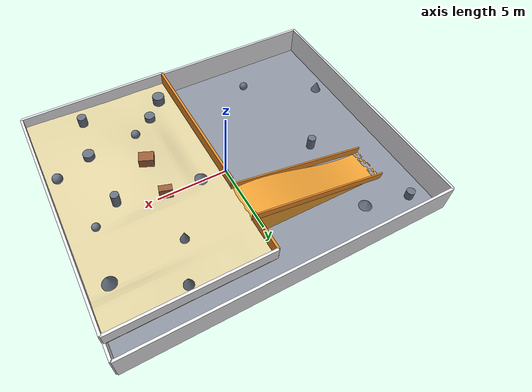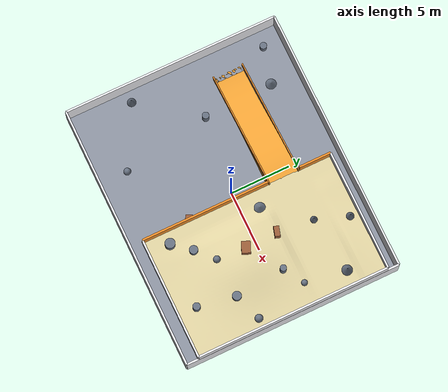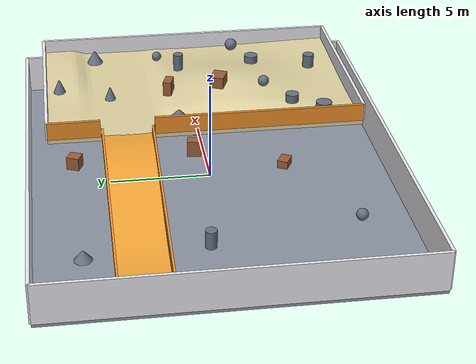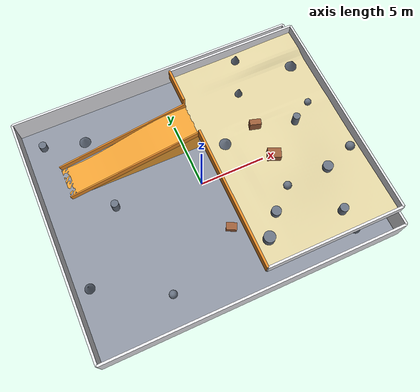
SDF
<?xml version='1.0' encoding='utf-8'?>
<sdf version="1.7">
  <world name="floor_6">
    <gravity>0 0 -9.8</gravity>
    <plugin name="gazebo_ros_state" filename="libgazebo_ros_state.so">
      <ros>
        <namespace>/gazebo</namespace>
      </ros>
    </plugin>
    <physics name="ode_physics" type="ode">
      <max_step_size>0.001</max_step_size>
      <real_time_factor>1</real_time_factor>
      <real_time_update_rate>1000</real_time_update_rate>
      <ode>
        <solver>
          <type>quick</type>
          <iters>150</iters>
          <sor>1.3</sor>
        </solver>
        <constraints>
          <cfm>0</cfm>
          <erp>0.2</erp>
          <contact_max_correcting_vel>0.2</contact_max_correcting_vel>
          <contact_surface_layer>0.001</contact_surface_layer>
        </constraints>
      </ode>
    </physics>
    <light name="sun" type="directional">
      <pose>0 0 28 0 0 0</pose>
      <diffuse>0.92 0.91 0.88 1</diffuse>
      <specular>0.18 0.18 0.16 1</specular>
      <direction>-0.35 -0.28 -0.9</direction>
      <cast_shadows>true</cast_shadows>
    </light>
    <light name="fill" type="point">
      <pose>0 0 4.5 0 0 0</pose>
      <diffuse>0.45 0.48 0.52 1</diffuse>
      <specular>0.02 0.02 0.02 1</specular>
      <cast_shadows>false</cast_shadows>
      <attenuation>
        <range>80</range>
        <constant>0.5</constant>
        <linear>0.02</linear>
      </attenuation>
    </light>
    <scene>
      <ambient>0.48 0.49 0.53 1</ambient>
      <background>0.72 0.77 0.84 1</background>
    </scene>
    <gui fullscreen="false">
      <camera name="user_camera">
        <pose>15.4 -16.2 18.7 0 0.65 2.2</pose>
        <view_controller>orbit</view_controller>
      </camera>
    </gui>
    <model name="floor_6_structure">
      <static>true</static>
      <link name="structure">
        <collision name="lower_collision">
          <pose>0 0 -0.1 0 0 0</pose>
          <geometry>
            <box>
              <size>22 18 0.2</size>
            </box>
          </geometry>
          <max_contacts>40</max_contacts>
          <surface>
            <friction>
              <ode>
                <mu>2</mu>
                <mu2>2</mu2>
              </ode>
            </friction>
            <contact>
              <ode>
                <kp>1e7</kp>
                <kd>1000</kd>
                <max_vel>0.1</max_vel>
                <min_depth>0.001</min_depth>
              </ode>
            </contact>
          </surface>
        </collision>
        <visual name="lower_visual">
          <pose>0 0 -0.1 0 0 0</pose>
          <geometry>
            <box>
              <size>22 18 0.2</size>
            </box>
          </geometry>
          <material>
            <ambient>0.54 0.57 0.62 1</ambient>
            <diffuse>0.54 0.57 0.62 1</diffuse>
          </material>
        </visual>
        <collision name="upper_surface_collision">
          <pose>0 0 0 0 0 0</pose>
          <geometry>
            <mesh>
              <uri>3DModel/floor/surfaces/floor_6_upper_surface.stl</uri>
            </mesh>
          </geometry>
          <max_contacts>40</max_contacts>
          <surface>
            <friction>
              <ode>
                <mu>8</mu>
                <mu2>8</mu2>
              </ode>
            </friction>
            <contact>
              <ode>
                <kp>1e7</kp>
                <kd>1000</kd>
                <max_vel>0.1</max_vel>
                <min_depth>0.001</min_depth>
              </ode>
            </contact>
          </surface>
        </collision>
        <visual name="upper_surface_visual">
          <pose>0 0 0 0 0 0</pose>
          <geometry>
            <mesh>
              <uri>3DModel/floor/surfaces/floor_6_upper_surface.stl</uri>
            </mesh>
          </geometry>
          <material>
            <ambient>0.86 0.81 0.62 1</ambient>
            <diffuse>0.86 0.81 0.62 1</diffuse>
          </material>
        </visual>
        <collision name="ramp_collision">
          <pose>0 0 0 0 0 0</pose>
          <geometry>
            <mesh>
              <uri>3DModel/floor/surfaces/floor_6_ramp.stl</uri>
            </mesh>
          </geometry>
          <max_contacts>40</max_contacts>
          <surface>
            <friction>
              <ode>
                <mu>8</mu>
                <mu2>8</mu2>
              </ode>
            </friction>
            <contact>
              <ode>
                <kp>1e7</kp>
                <kd>1000</kd>
                <max_vel>0.1</max_vel>
                <min_depth>0.001</min_depth>
              </ode>
            </contact>
          </surface>
        </collision>
        <visual name="ramp_visual">
          <pose>0 0 0 0 0 0</pose>
          <geometry>
            <mesh>
              <uri>3DModel/floor/surfaces/floor_6_ramp.stl</uri>
            </mesh>
          </geometry>
          <material>
            <ambient>0.92 0.62 0.20 1</ambient>
            <diffuse>0.92 0.62 0.20 1</diffuse>
          </material>
        </visual>
        <collision name="ramp_rail_-1_collision">
          <pose>-3.95659161 2.74 1.24190272 0 -0.205991337 0</pose>
          <geometry>
            <box>
              <size>10.267059 0.1 0.5</size>
            </box>
          </geometry>
          <max_contacts>40</max_contacts>
          <surface>
            <friction>
              <ode>
                <mu>2</mu>
                <mu2>2</mu2>
              </ode>
            </friction>
            <contact>
              <ode>
                <kp>1e7</kp>
                <kd>1000</kd>
                <max_vel>0.1</max_vel>
                <min_depth>0.001</min_depth>
              </ode>
            </contact>
          </surface>
        </collision>
        <visual name="ramp_rail_-1_visual">
          <pose>-3.95659161 2.74 1.24190272 0 -0.205991337 0</pose>
          <geometry>
            <box>
              <size>10.267059 0.1 0.5</size>
            </box>
          </geometry>
          <material>
            <ambient>0.92 0.55 0.16 1</ambient>
            <diffuse>0.92 0.55 0.16 1</diffuse>
          </material>
        </visual>
        <collision name="ramp_rail_1_collision">
          <pose>-3.95659161 5.26 1.24190272 0 -0.205991337 0</pose>
          <geometry>
            <box>
              <size>10.267059 0.1 0.5</size>
            </box>
          </geometry>
          <max_contacts>40</max_contacts>
          <surface>
            <friction>
              <ode>
                <mu>2</mu>
                <mu2>2</mu2>
              </ode>
            </friction>
            <contact>
              <ode>
                <kp>1e7</kp>
                <kd>1000</kd>
                <max_vel>0.1</max_vel>
                <min_depth>0.001</min_depth>
              </ode>
            </contact>
          </surface>
        </collision>
        <visual name="ramp_rail_1_visual">
          <pose>-3.95659161 5.26 1.24190272 0 -0.205991337 0</pose>
          <geometry>
            <box>
              <size>10.267059 0.1 0.5</size>
            </box>
          </geometry>
          <material>
            <ambient>0.92 0.55 0.16 1</ambient>
            <diffuse>0.92 0.55 0.16 1</diffuse>
          </material>
        </visual>
        <collision name="upper_rail_0_collision">
          <pose>6 -8 2.55 0 0 0</pose>
          <geometry>
            <box>
              <size>10 0.16 0.9</size>
            </box>
          </geometry>
          <max_contacts>40</max_contacts>
          <surface>
            <friction>
              <ode>
                <mu>2</mu>
                <mu2>2</mu2>
              </ode>
            </friction>
            <contact>
              <ode>
                <kp>1e7</kp>
                <kd>1000</kd>
                <max_vel>0.1</max_vel>
                <min_depth>0.001</min_depth>
              </ode>
            </contact>
          </surface>
        </collision>
        <visual name="upper_rail_0_visual">
          <pose>6 -8 2.55 0 0 0</pose>
          <geometry>
            <box>
              <size>10 0.16 0.9</size>
            </box>
          </geometry>
          <material>
            <ambient>0.91 0.91 0.93 1</ambient>
            <diffuse>0.91 0.91 0.93 1</diffuse>
          </material>
        </visual>
        <collision name="upper_rail_1_collision">
          <pose>11 0 2.55 0 0 1.57079633</pose>
          <geometry>
            <box>
              <size>16 0.16 0.9</size>
            </box>
          </geometry>
          <max_contacts>40</max_contacts>
          <surface>
            <friction>
              <ode>
                <mu>2</mu>
                <mu2>2</mu2>
              </ode>
            </friction>
            <contact>
              <ode>
                <kp>1e7</kp>
                <kd>1000</kd>
                <max_vel>0.1</max_vel>
                <min_depth>0.001</min_depth>
              </ode>
            </contact>
          </surface>
        </collision>
        <visual name="upper_rail_1_visual">
          <pose>11 0 2.55 0 0 1.57079633</pose>
          <geometry>
            <box>
              <size>16 0.16 0.9</size>
            </box>
          </geometry>
          <material>
            <ambient>0.91 0.91 0.93 1</ambient>
            <diffuse>0.91 0.91 0.93 1</diffuse>
          </material>
        </visual>
        <collision name="upper_rail_2_collision">
          <pose>6 8 2.55 0 0 3.14159265</pose>
          <geometry>
            <box>
              <size>10 0.16 0.9</size>
            </box>
          </geometry>
          <max_contacts>40</max_contacts>
          <surface>
            <friction>
              <ode>
                <mu>2</mu>
                <mu2>2</mu2>
              </ode>
            </friction>
            <contact>
              <ode>
                <kp>1e7</kp>
                <kd>1000</kd>
                <max_vel>0.1</max_vel>
                <min_depth>0.001</min_depth>
              </ode>
            </contact>
          </surface>
        </collision>
        <visual name="upper_rail_2_visual">
          <pose>6 8 2.55 0 0 3.14159265</pose>
          <geometry>
            <box>
              <size>10 0.16 0.9</size>
            </box>
          </geometry>
          <material>
            <ambient>0.91 0.91 0.93 1</ambient>
            <diffuse>0.91 0.91 0.93 1</diffuse>
          </material>
        </visual>
        <collision name="upper_west_south_collision">
          <pose>1 -2.675 2.55 0 0 0</pose>
          <geometry>
            <box>
              <size>0.16 10.65 0.9</size>
            </box>
          </geometry>
          <max_contacts>40</max_contacts>
          <surface>
            <friction>
              <ode>
                <mu>2</mu>
                <mu2>2</mu2>
              </ode>
            </friction>
            <contact>
              <ode>
                <kp>1e7</kp>
                <kd>1000</kd>
                <max_vel>0.1</max_vel>
                <min_depth>0.001</min_depth>
              </ode>
            </contact>
          </surface>
        </collision>
        <visual name="upper_west_south_visual">
          <pose>1 -2.675 2.55 0 0 0</pose>
          <geometry>
            <box>
              <size>0.16 10.65 0.9</size>
            </box>
          </geometry>
          <material>
            <ambient>0.92 0.55 0.16 1</ambient>
            <diffuse>0.92 0.55 0.16 1</diffuse>
          </material>
        </visual>
        <collision name="upper_west_north_collision">
          <pose>1 6.675 2.55 0 0 0</pose>
          <geometry>
            <box>
              <size>0.16 2.65 0.9</size>
            </box>
          </geometry>
          <max_contacts>40</max_contacts>
          <surface>
            <friction>
              <ode>
                <mu>2</mu>
                <mu2>2</mu2>
              </ode>
            </friction>
            <contact>
              <ode>
                <kp>1e7</kp>
                <kd>1000</kd>
                <max_vel>0.1</max_vel>
                <min_depth>0.001</min_depth>
              </ode>
            </contact>
          </surface>
        </collision>
        <visual name="upper_west_north_visual">
          <pose>1 6.675 2.55 0 0 0</pose>
          <geometry>
            <box>
              <size>0.16 2.65 0.9</size>
            </box>
          </geometry>
          <material>
            <ambient>0.92 0.55 0.16 1</ambient>
            <diffuse>0.92 0.55 0.16 1</diffuse>
          </material>
        </visual>
        <collision name="boundary_0_collision">
          <pose>0 -9 1 0 0 0</pose>
          <geometry>
            <box>
              <size>22 0.16 2</size>
            </box>
          </geometry>
          <max_contacts>40</max_contacts>
          <surface>
            <friction>
              <ode>
                <mu>2</mu>
                <mu2>2</mu2>
              </ode>
            </friction>
            <contact>
              <ode>
                <kp>1e7</kp>
                <kd>1000</kd>
                <max_vel>0.1</max_vel>
                <min_depth>0.001</min_depth>
              </ode>
            </contact>
          </surface>
        </collision>
        <visual name="boundary_0_visual">
          <pose>0 -9 1 0 0 0</pose>
          <geometry>
            <box>
              <size>22 0.16 2</size>
            </box>
          </geometry>
          <material>
            <ambient>0.91 0.91 0.93 1</ambient>
            <diffuse>0.91 0.91 0.93 1</diffuse>
          </material>
        </visual>
        <collision name="boundary_1_collision">
          <pose>11 0 1 0 0 1.57079633</pose>
          <geometry>
            <box>
              <size>18 0.16 2</size>
            </box>
          </geometry>
          <max_contacts>40</max_contacts>
          <surface>
            <friction>
              <ode>
                <mu>2</mu>
                <mu2>2</mu2>
              </ode>
            </friction>
            <contact>
              <ode>
                <kp>1e7</kp>
                <kd>1000</kd>
                <max_vel>0.1</max_vel>
                <min_depth>0.001</min_depth>
              </ode>
            </contact>
          </surface>
        </collision>
        <visual name="boundary_1_visual">
          <pose>11 0 1 0 0 1.57079633</pose>
          <geometry>
            <box>
              <size>18 0.16 2</size>
            </box>
          </geometry>
          <material>
            <ambient>0.91 0.91 0.93 1</ambient>
            <diffuse>0.91 0.91 0.93 1</diffuse>
          </material>
        </visual>
        <collision name="boundary_2_collision">
          <pose>0 9 1 0 0 3.14159265</pose>
          <geometry>
            <box>
              <size>22 0.16 2</size>
            </box>
          </geometry>
          <max_contacts>40</max_contacts>
          <surface>
            <friction>
              <ode>
                <mu>2</mu>
                <mu2>2</mu2>
              </ode>
            </friction>
            <contact>
              <ode>
                <kp>1e7</kp>
                <kd>1000</kd>
                <max_vel>0.1</max_vel>
                <min_depth>0.001</min_depth>
              </ode>
            </contact>
          </surface>
        </collision>
        <visual name="boundary_2_visual">
          <pose>0 9 1 0 0 3.14159265</pose>
          <geometry>
            <box>
              <size>22 0.16 2</size>
            </box>
          </geometry>
          <material>
            <ambient>0.91 0.91 0.93 1</ambient>
            <diffuse>0.91 0.91 0.93 1</diffuse>
          </material>
        </visual>
        <collision name="boundary_3_collision">
          <pose>-11 0 1 0 0 -1.57079633</pose>
          <geometry>
            <box>
              <size>18 0.16 2</size>
            </box>
          </geometry>
          <max_contacts>40</max_contacts>
          <surface>
            <friction>
              <ode>
                <mu>2</mu>
                <mu2>2</mu2>
              </ode>
            </friction>
            <contact>
              <ode>
                <kp>1e7</kp>
                <kd>1000</kd>
                <max_vel>0.1</max_vel>
                <min_depth>0.001</min_depth>
              </ode>
            </contact>
          </surface>
        </collision>
        <visual name="boundary_3_visual">
          <pose>-11 0 1 0 0 -1.57079633</pose>
          <geometry>
            <box>
              <size>18 0.16 2</size>
            </box>
          </geometry>
          <material>
            <ambient>0.91 0.91 0.93 1</ambient>
            <diffuse>0.91 0.91 0.93 1</diffuse>
          </material>
        </visual>
        <collision name="irregular_prop_0_collision">
          <pose>1.75216365 6.72323502 0.336839795 0 0 -0.410943459</pose>
          <geometry>
            <box>
              <size>0.624972921 0.655043189 0.673679591</size>
            </box>
          </geometry>
          <max_contacts>40</max_contacts>
          <surface>
            <friction>
              <ode>
                <mu>2</mu>
                <mu2>2</mu2>
              </ode>
            </friction>
            <contact>
              <ode>
                <kp>1e7</kp>
                <kd>1000</kd>
                <max_vel>0.1</max_vel>
                <min_depth>0.001</min_depth>
              </ode>
            </contact>
          </surface>
        </collision>
        <visual name="irregular_prop_0_visual">
          <pose>1.75216365 6.72323502 0.336839795 0 0 -0.410943459</pose>
          <geometry>
            <box>
              <size>0.624972921 0.655043189 0.673679591</size>
            </box>
          </geometry>
          <material>
            <ambient>0.60 0.36 0.22 1</ambient>
            <diffuse>0.60 0.36 0.22 1</diffuse>
          </material>
        </visual>
        <collision name="irregular_prop_1_collision">
          <pose>7.97721317 -3.335627 2.61274681 0 0 -2.2577816</pose>
          <geometry>
            <cylinder>
              <radius>0.3609928467809029</radius>
              <length>0.43354348794555325</length>
            </cylinder>
          </geometry>
          <max_contacts>40</max_contacts>
          <surface>
            <friction>
              <ode>
                <mu>2</mu>
                <mu2>2</mu2>
              </ode>
            </friction>
            <contact>
              <ode>
                <kp>1e7</kp>
                <kd>1000</kd>
                <max_vel>0.1</max_vel>
                <min_depth>0.001</min_depth>
              </ode>
            </contact>
          </surface>
        </collision>
        <visual name="irregular_prop_1_visual">
          <pose>7.97721317 -3.335627 2.61274681 0 0 -2.2577816</pose>
          <geometry>
            <cylinder>
              <radius>0.3609928467809029</radius>
              <length>0.43354348794555325</length>
            </cylinder>
          </geometry>
          <material>
            <ambient>0.40 0.44 0.50 1</ambient>
            <diffuse>0.40 0.44 0.50 1</diffuse>
          </material>
        </visual>
        <collision name="irregular_prop_2_collision">
          <pose>-5.02102213 -6.5985196 0.298354599 0 0 -0.399627976</pose>
          <geometry>
            <sphere>
              <radius>0.298354598621737</radius>
            </sphere>
          </geometry>
          <max_contacts>40</max_contacts>
          <surface>
            <friction>
              <ode>
                <mu>2</mu>
                <mu2>2</mu2>
              </ode>
            </friction>
            <contact>
              <ode>
                <kp>1e7</kp>
                <kd>1000</kd>
                <max_vel>0.1</max_vel>
                <min_depth>0.001</min_depth>
              </ode>
            </contact>
          </surface>
        </collision>
        <visual name="irregular_prop_2_visual">
          <pose>-5.02102213 -6.5985196 0.298354599 0 0 -0.399627976</pose>
          <geometry>
            <sphere>
              <radius>0.298354598621737</radius>
            </sphere>
          </geometry>
          <material>
            <ambient>0.40 0.44 0.50 1</ambient>
            <diffuse>0.40 0.44 0.50 1</diffuse>
          </material>
        </visual>
        <collision name="irregular_prop_3_collision">
          <pose>0 0 0 0 0 0</pose>
          <geometry>
            <mesh>
              <uri>3DModel/floor/surfaces/floor_6_irregular_prop_3.stl</uri>
            </mesh>
          </geometry>
          <max_contacts>40</max_contacts>
          <surface>
            <friction>
              <ode>
                <mu>8</mu>
                <mu2>8</mu2>
              </ode>
            </friction>
            <contact>
              <ode>
                <kp>1e7</kp>
                <kd>1000</kd>
                <max_vel>0.1</max_vel>
                <min_depth>0.001</min_depth>
              </ode>
            </contact>
          </surface>
        </collision>
        <visual name="irregular_prop_3_visual">
          <pose>0 0 0 0 0 0</pose>
          <geometry>
            <mesh>
              <uri>3DModel/floor/surfaces/floor_6_irregular_prop_3.stl</uri>
            </mesh>
          </geometry>
          <material>
            <ambient>0.40 0.44 0.50 1</ambient>
            <diffuse>0.40 0.44 0.50 1</diffuse>
          </material>
        </visual>
        <collision name="irregular_prop_4_collision">
          <pose>2.29851493 0.517433639 0.426102426 0 0 2.96853706</pose>
          <geometry>
            <box>
              <size>0.579599147 0.731316518 0.852204853</size>
            </box>
          </geometry>
          <max_contacts>40</max_contacts>
          <surface>
            <friction>
              <ode>
                <mu>2</mu>
                <mu2>2</mu2>
              </ode>
            </friction>
            <contact>
              <ode>
                <kp>1e7</kp>
                <kd>1000</kd>
                <max_vel>0.1</max_vel>
                <min_depth>0.001</min_depth>
              </ode>
            </contact>
          </surface>
        </collision>
        <visual name="irregular_prop_4_visual">
          <pose>2.29851493 0.517433639 0.426102426 0 0 2.96853706</pose>
          <geometry>
            <box>
              <size>0.579599147 0.731316518 0.852204853</size>
            </box>
          </geometry>
          <material>
            <ambient>0.60 0.36 0.22 1</ambient>
            <diffuse>0.60 0.36 0.22 1</diffuse>
          </material>
        </visual>
        <collision name="irregular_prop_5_collision">
          <pose>2.07214012 -6.18904434 2.40844062 0 0 0.55829268</pose>
          <geometry>
            <cylinder>
              <radius>0.40740753690521936</radius>
              <length>0.6158247873158046</length>
            </cylinder>
          </geometry>
          <max_contacts>40</max_contacts>
          <surface>
            <friction>
              <ode>
                <mu>2</mu>
                <mu2>2</mu2>
              </ode>
            </friction>
            <contact>
              <ode>
                <kp>1e7</kp>
                <kd>1000</kd>
                <max_vel>0.1</max_vel>
                <min_depth>0.001</min_depth>
              </ode>
            </contact>
          </surface>
        </collision>
        <visual name="irregular_prop_5_visual">
          <pose>2.07214012 -6.18904434 2.40844062 0 0 0.55829268</pose>
          <geometry>
            <cylinder>
              <radius>0.40740753690521936</radius>
              <length>0.6158247873158046</length>
            </cylinder>
          </geometry>
          <material>
            <ambient>0.40 0.44 0.50 1</ambient>
            <diffuse>0.40 0.44 0.50 1</diffuse>
          </material>
        </visual>
        <collision name="irregular_prop_6_collision">
          <pose>6.02579331 3.07765522 0.368049647 0 0 0.720175745</pose>
          <geometry>
            <sphere>
              <radius>0.36804964745130897</radius>
            </sphere>
          </geometry>
          <max_contacts>40</max_contacts>
          <surface>
            <friction>
              <ode>
                <mu>2</mu>
                <mu2>2</mu2>
              </ode>
            </friction>
            <contact>
              <ode>
                <kp>1e7</kp>
                <kd>1000</kd>
                <max_vel>0.1</max_vel>
                <min_depth>0.001</min_depth>
              </ode>
            </contact>
          </surface>
        </collision>
        <visual name="irregular_prop_6_visual">
          <pose>6.02579331 3.07765522 0.368049647 0 0 0.720175745</pose>
          <geometry>
            <sphere>
              <radius>0.36804964745130897</radius>
            </sphere>
          </geometry>
          <material>
            <ambient>0.40 0.44 0.50 1</ambient>
            <diffuse>0.40 0.44 0.50 1</diffuse>
          </material>
        </visual>
        <collision name="irregular_prop_7_collision">
          <pose>0 0 0 0 0 0</pose>
          <geometry>
            <mesh>
              <uri>3DModel/floor/surfaces/floor_6_irregular_prop_7.stl</uri>
            </mesh>
          </geometry>
          <max_contacts>40</max_contacts>
          <surface>
            <friction>
              <ode>
                <mu>8</mu>
                <mu2>8</mu2>
              </ode>
            </friction>
            <contact>
              <ode>
                <kp>1e7</kp>
                <kd>1000</kd>
                <max_vel>0.1</max_vel>
                <min_depth>0.001</min_depth>
              </ode>
            </contact>
          </surface>
        </collision>
        <visual name="irregular_prop_7_visual">
          <pose>0 0 0 0 0 0</pose>
          <geometry>
            <mesh>
              <uri>3DModel/floor/surfaces/floor_6_irregular_prop_7.stl</uri>
            </mesh>
          </geometry>
          <material>
            <ambient>0.40 0.44 0.50 1</ambient>
            <diffuse>0.40 0.44 0.50 1</diffuse>
          </material>
        </visual>
        <collision name="irregular_prop_8_collision">
          <pose>4.68612897 2.78550857 0.435067149 0 0 1.75936407</pose>
          <geometry>
            <box>
              <size>0.563872067 0.411552293 0.870134297</size>
            </box>
          </geometry>
          <max_contacts>40</max_contacts>
          <surface>
            <friction>
              <ode>
                <mu>2</mu>
                <mu2>2</mu2>
              </ode>
            </friction>
            <contact>
              <ode>
                <kp>1e7</kp>
                <kd>1000</kd>
                <max_vel>0.1</max_vel>
                <min_depth>0.001</min_depth>
              </ode>
            </contact>
          </surface>
        </collision>
        <visual name="irregular_prop_8_visual">
          <pose>4.68612897 2.78550857 0.435067149 0 0 1.75936407</pose>
          <geometry>
            <box>
              <size>0.563872067 0.411552293 0.870134297</size>
            </box>
          </geometry>
          <material>
            <ambient>0.60 0.36 0.22 1</ambient>
            <diffuse>0.60 0.36 0.22 1</diffuse>
          </material>
        </visual>
        <collision name="irregular_prop_9_collision">
          <pose>3.29898403 -4.7679368 2.46161423 0 0 -1.0785645</pose>
          <geometry>
            <cylinder>
              <radius>0.3429199744667032</radius>
              <length>0.43444383784957064</length>
            </cylinder>
          </geometry>
          <max_contacts>40</max_contacts>
          <surface>
            <friction>
              <ode>
                <mu>2</mu>
                <mu2>2</mu2>
              </ode>
            </friction>
            <contact>
              <ode>
                <kp>1e7</kp>
                <kd>1000</kd>
                <max_vel>0.1</max_vel>
                <min_depth>0.001</min_depth>
              </ode>
            </contact>
          </surface>
        </collision>
        <visual name="irregular_prop_9_visual">
          <pose>3.29898403 -4.7679368 2.46161423 0 0 -1.0785645</pose>
          <geometry>
            <cylinder>
              <radius>0.3429199744667032</radius>
              <length>0.43444383784957064</length>
            </cylinder>
          </geometry>
          <material>
            <ambient>0.40 0.44 0.50 1</ambient>
            <diffuse>0.40 0.44 0.50 1</diffuse>
          </material>
        </visual>
        <collision name="irregular_prop_10_collision">
          <pose>9.23807142 1.78710676 2.4740596 0 0 0.701053599</pose>
          <geometry>
            <sphere>
              <radius>0.2558595636240747</radius>
            </sphere>
          </geometry>
          <max_contacts>40</max_contacts>
          <surface>
            <friction>
              <ode>
                <mu>2</mu>
                <mu2>2</mu2>
              </ode>
            </friction>
            <contact>
              <ode>
                <kp>1e7</kp>
                <kd>1000</kd>
                <max_vel>0.1</max_vel>
                <min_depth>0.001</min_depth>
              </ode>
            </contact>
          </surface>
        </collision>
        <visual name="irregular_prop_10_visual">
          <pose>9.23807142 1.78710676 2.4740596 0 0 0.701053599</pose>
          <geometry>
            <sphere>
              <radius>0.2558595636240747</radius>
            </sphere>
          </geometry>
          <material>
            <ambient>0.40 0.44 0.50 1</ambient>
            <diffuse>0.40 0.44 0.50 1</diffuse>
          </material>
        </visual>
        <collision name="irregular_prop_11_collision">
          <pose>0 0 0 0 0 0</pose>
          <geometry>
            <mesh>
              <uri>3DModel/floor/surfaces/floor_6_irregular_prop_11.stl</uri>
            </mesh>
          </geometry>
          <max_contacts>40</max_contacts>
          <surface>
            <friction>
              <ode>
                <mu>8</mu>
                <mu2>8</mu2>
              </ode>
            </friction>
            <contact>
              <ode>
                <kp>1e7</kp>
                <kd>1000</kd>
                <max_vel>0.1</max_vel>
                <min_depth>0.001</min_depth>
              </ode>
            </contact>
          </surface>
        </collision>
        <visual name="irregular_prop_11_visual">
          <pose>0 0 0 0 0 0</pose>
          <geometry>
            <mesh>
              <uri>3DModel/floor/surfaces/floor_6_irregular_prop_11.stl</uri>
            </mesh>
          </geometry>
          <material>
            <ambient>0.40 0.44 0.50 1</ambient>
            <diffuse>0.40 0.44 0.50 1</diffuse>
          </material>
        </visual>
        <collision name="irregular_prop_12_collision">
          <pose>4.94011186 -1.11626118 2.9249619 0 0 -0.397233943</pose>
          <geometry>
            <box>
              <size>0.93995687 0.714765917 0.612962966</size>
            </box>
          </geometry>
          <max_contacts>40</max_contacts>
          <surface>
            <friction>
              <ode>
                <mu>2</mu>
                <mu2>2</mu2>
              </ode>
            </friction>
            <contact>
              <ode>
                <kp>1e7</kp>
                <kd>1000</kd>
                <max_vel>0.1</max_vel>
                <min_depth>0.001</min_depth>
              </ode>
            </contact>
          </surface>
        </collision>
        <visual name="irregular_prop_12_visual">
          <pose>4.94011186 -1.11626118 2.9249619 0 0 -0.397233943</pose>
          <geometry>
            <box>
              <size>0.93995687 0.714765917 0.612962966</size>
            </box>
          </geometry>
          <material>
            <ambient>0.60 0.36 0.22 1</ambient>
            <diffuse>0.60 0.36 0.22 1</diffuse>
          </material>
        </visual>
        <collision name="irregular_prop_13_collision">
          <pose>-6.33597581 0.801972342 0.450765735 0 0 -1.99835196</pose>
          <geometry>
            <cylinder>
              <radius>0.2795209785991533</radius>
              <length>0.9015314708323441</length>
            </cylinder>
          </geometry>
          <max_contacts>40</max_contacts>
          <surface>
            <friction>
              <ode>
                <mu>2</mu>
                <mu2>2</mu2>
              </ode>
            </friction>
            <contact>
              <ode>
                <kp>1e7</kp>
                <kd>1000</kd>
                <max_vel>0.1</max_vel>
                <min_depth>0.001</min_depth>
              </ode>
            </contact>
          </surface>
        </collision>
        <visual name="irregular_prop_13_visual">
          <pose>-6.33597581 0.801972342 0.450765735 0 0 -1.99835196</pose>
          <geometry>
            <cylinder>
              <radius>0.2795209785991533</radius>
              <length>0.9015314708323441</length>
            </cylinder>
          </geometry>
          <material>
            <ambient>0.40 0.44 0.50 1</ambient>
            <diffuse>0.40 0.44 0.50 1</diffuse>
          </material>
        </visual>
        <collision name="irregular_prop_14_collision">
          <pose>10.2301682 -2.55321074 2.50812382 0 0 -2.52882778</pose>
          <geometry>
            <sphere>
              <radius>0.32981249519875266</radius>
            </sphere>
          </geometry>
          <max_contacts>40</max_contacts>
          <surface>
            <friction>
              <ode>
                <mu>2</mu>
                <mu2>2</mu2>
              </ode>
            </friction>
            <contact>
              <ode>
                <kp>1e7</kp>
                <kd>1000</kd>
                <max_vel>0.1</max_vel>
                <min_depth>0.001</min_depth>
              </ode>
            </contact>
          </surface>
        </collision>
        <visual name="irregular_prop_14_visual">
          <pose>10.2301682 -2.55321074 2.50812382 0 0 -2.52882778</pose>
          <geometry>
            <sphere>
              <radius>0.32981249519875266</radius>
            </sphere>
          </geometry>
          <material>
            <ambient>0.40 0.44 0.50 1</ambient>
            <diffuse>0.40 0.44 0.50 1</diffuse>
          </material>
        </visual>
        <collision name="irregular_prop_15_collision">
          <pose>0 0 0 0 0 0</pose>
          <geometry>
            <mesh>
              <uri>3DModel/floor/surfaces/floor_6_irregular_prop_15.stl</uri>
            </mesh>
          </geometry>
          <max_contacts>40</max_contacts>
          <surface>
            <friction>
              <ode>
                <mu>8</mu>
                <mu2>8</mu2>
              </ode>
            </friction>
            <contact>
              <ode>
                <kp>1e7</kp>
                <kd>1000</kd>
                <max_vel>0.1</max_vel>
                <min_depth>0.001</min_depth>
              </ode>
            </contact>
          </surface>
        </collision>
        <visual name="irregular_prop_15_visual">
          <pose>0 0 0 0 0 0</pose>
          <geometry>
            <mesh>
              <uri>3DModel/floor/surfaces/floor_6_irregular_prop_15.stl</uri>
            </mesh>
          </geometry>
          <material>
            <ambient>0.40 0.44 0.50 1</ambient>
            <diffuse>0.40 0.44 0.50 1</diffuse>
          </material>
        </visual>
        <collision name="irregular_prop_16_collision">
          <pose>4.82390356 1.56567813 2.76846069 0 0 -0.29259997</pose>
          <geometry>
            <box>
              <size>0.813321894 0.428553409 0.762513727</size>
            </box>
          </geometry>
          <max_contacts>40</max_contacts>
          <surface>
            <friction>
              <ode>
                <mu>2</mu>
                <mu2>2</mu2>
              </ode>
            </friction>
            <contact>
              <ode>
                <kp>1e7</kp>
                <kd>1000</kd>
                <max_vel>0.1</max_vel>
                <min_depth>0.001</min_depth>
              </ode>
            </contact>
          </surface>
        </collision>
        <visual name="irregular_prop_16_visual">
          <pose>4.82390356 1.56567813 2.76846069 0 0 -0.29259997</pose>
          <geometry>
            <box>
              <size>0.813321894 0.428553409 0.762513727</size>
            </box>
          </geometry>
          <material>
            <ambient>0.60 0.36 0.22 1</ambient>
            <diffuse>0.60 0.36 0.22 1</diffuse>
          </material>
        </visual>
        <collision name="irregular_prop_17_collision">
          <pose>7.63415593 0.743854995 2.82009462 0 0 -1.95804533</pose>
          <geometry>
            <cylinder>
              <radius>0.25811042785494637</radius>
              <length>0.9111444445391436</length>
            </cylinder>
          </geometry>
          <max_contacts>40</max_contacts>
          <surface>
            <friction>
              <ode>
                <mu>2</mu>
                <mu2>2</mu2>
              </ode>
            </friction>
            <contact>
              <ode>
                <kp>1e7</kp>
                <kd>1000</kd>
                <max_vel>0.1</max_vel>
                <min_depth>0.001</min_depth>
              </ode>
            </contact>
          </surface>
        </collision>
        <visual name="irregular_prop_17_visual">
          <pose>7.63415593 0.743854995 2.82009462 0 0 -1.95804533</pose>
          <geometry>
            <cylinder>
              <radius>0.25811042785494637</radius>
              <length>0.9111444445391436</length>
            </cylinder>
          </geometry>
          <material>
            <ambient>0.40 0.44 0.50 1</ambient>
            <diffuse>0.40 0.44 0.50 1</diffuse>
          </material>
        </visual>
        <collision name="irregular_prop_18_collision">
          <pose>8.35636631 -7.59031237 0.344498519 0 0 -1.64256179</pose>
          <geometry>
            <sphere>
              <radius>0.3444985192110773</radius>
            </sphere>
          </geometry>
          <max_contacts>40</max_contacts>
          <surface>
            <friction>
              <ode>
                <mu>2</mu>
                <mu2>2</mu2>
              </ode>
            </friction>
            <contact>
              <ode>
                <kp>1e7</kp>
                <kd>1000</kd>
                <max_vel>0.1</max_vel>
                <min_depth>0.001</min_depth>
              </ode>
            </contact>
          </surface>
        </collision>
        <visual name="irregular_prop_18_visual">
          <pose>8.35636631 -7.59031237 0.344498519 0 0 -1.64256179</pose>
          <geometry>
            <sphere>
              <radius>0.3444985192110773</radius>
            </sphere>
          </geometry>
          <material>
            <ambient>0.40 0.44 0.50 1</ambient>
            <diffuse>0.40 0.44 0.50 1</diffuse>
          </material>
        </visual>
        <collision name="irregular_prop_19_collision">
          <pose>0 0 0 0 0 0</pose>
          <geometry>
            <mesh>
              <uri>3DModel/floor/surfaces/floor_6_irregular_prop_19.stl</uri>
            </mesh>
          </geometry>
          <max_contacts>40</max_contacts>
          <surface>
            <friction>
              <ode>
                <mu>8</mu>
                <mu2>8</mu2>
              </ode>
            </friction>
            <contact>
              <ode>
                <kp>1e7</kp>
                <kd>1000</kd>
                <max_vel>0.1</max_vel>
                <min_depth>0.001</min_depth>
              </ode>
            </contact>
          </surface>
        </collision>
        <visual name="irregular_prop_19_visual">
          <pose>0 0 0 0 0 0</pose>
          <geometry>
            <mesh>
              <uri>3DModel/floor/surfaces/floor_6_irregular_prop_19.stl</uri>
            </mesh>
          </geometry>
          <material>
            <ambient>0.40 0.44 0.50 1</ambient>
            <diffuse>0.40 0.44 0.50 1</diffuse>
          </material>
        </visual>
        <collision name="irregular_prop_20_collision">
          <pose>0.538293877 -3.91028592 0.207104162 0 0 -0.484686181</pose>
          <geometry>
            <box>
              <size>0.762849699 0.542369844 0.414208324</size>
            </box>
          </geometry>
          <max_contacts>40</max_contacts>
          <surface>
            <friction>
              <ode>
                <mu>2</mu>
                <mu2>2</mu2>
              </ode>
            </friction>
            <contact>
              <ode>
                <kp>1e7</kp>
                <kd>1000</kd>
                <max_vel>0.1</max_vel>
                <min_depth>0.001</min_depth>
              </ode>
            </contact>
          </surface>
        </collision>
        <visual name="irregular_prop_20_visual">
          <pose>0.538293877 -3.91028592 0.207104162 0 0 -0.484686181</pose>
          <geometry>
            <box>
              <size>0.762849699 0.542369844 0.414208324</size>
            </box>
          </geometry>
          <material>
            <ambient>0.60 0.36 0.22 1</ambient>
            <diffuse>0.60 0.36 0.22 1</diffuse>
          </material>
        </visual>
        <collision name="irregular_prop_21_collision">
          <pose>7.41681246 -6.4654539 2.57883423 0 0 2.60702763</pose>
          <geometry>
            <cylinder>
              <radius>0.3009241051718477</radius>
              <length>0.7188919722283774</length>
            </cylinder>
          </geometry>
          <max_contacts>40</max_contacts>
          <surface>
            <friction>
              <ode>
                <mu>2</mu>
                <mu2>2</mu2>
              </ode>
            </friction>
            <contact>
              <ode>
                <kp>1e7</kp>
                <kd>1000</kd>
                <max_vel>0.1</max_vel>
                <min_depth>0.001</min_depth>
              </ode>
            </contact>
          </surface>
        </collision>
        <visual name="irregular_prop_21_visual">
          <pose>7.41681246 -6.4654539 2.57883423 0 0 2.60702763</pose>
          <geometry>
            <cylinder>
              <radius>0.3009241051718477</radius>
              <length>0.7188919722283774</length>
            </cylinder>
          </geometry>
          <material>
            <ambient>0.40 0.44 0.50 1</ambient>
            <diffuse>0.40 0.44 0.50 1</diffuse>
          </material>
        </visual>
        <collision name="irregular_prop_22_collision">
          <pose>6.80499955 -1.43971544 0.330527801 0 0 -2.30310546</pose>
          <geometry>
            <sphere>
              <radius>0.33052780111037866</radius>
            </sphere>
          </geometry>
          <max_contacts>40</max_contacts>
          <surface>
            <friction>
              <ode>
                <mu>2</mu>
                <mu2>2</mu2>
              </ode>
            </friction>
            <contact>
              <ode>
                <kp>1e7</kp>
                <kd>1000</kd>
                <max_vel>0.1</max_vel>
                <min_depth>0.001</min_depth>
              </ode>
            </contact>
          </surface>
        </collision>
        <visual name="irregular_prop_22_visual">
          <pose>6.80499955 -1.43971544 0.330527801 0 0 -2.30310546</pose>
          <geometry>
            <sphere>
              <radius>0.33052780111037866</radius>
            </sphere>
          </geometry>
          <material>
            <ambient>0.40 0.44 0.50 1</ambient>
            <diffuse>0.40 0.44 0.50 1</diffuse>
          </material>
        </visual>
        <collision name="irregular_prop_23_collision">
          <pose>0 0 0 0 0 0</pose>
          <geometry>
            <mesh>
              <uri>3DModel/floor/surfaces/floor_6_irregular_prop_23.stl</uri>
            </mesh>
          </geometry>
          <max_contacts>40</max_contacts>
          <surface>
            <friction>
              <ode>
                <mu>8</mu>
                <mu2>8</mu2>
              </ode>
            </friction>
            <contact>
              <ode>
                <kp>1e7</kp>
                <kd>1000</kd>
                <max_vel>0.1</max_vel>
                <min_depth>0.001</min_depth>
              </ode>
            </contact>
          </surface>
        </collision>
        <visual name="irregular_prop_23_visual">
          <pose>0 0 0 0 0 0</pose>
          <geometry>
            <mesh>
              <uri>3DModel/floor/surfaces/floor_6_irregular_prop_23.stl</uri>
            </mesh>
          </geometry>
          <material>
            <ambient>0.40 0.44 0.50 1</ambient>
            <diffuse>0.40 0.44 0.50 1</diffuse>
          </material>
        </visual>
        <collision name="irregular_prop_24_collision">
          <pose>5.6410347 -6.04993849 0.263830282 0 0 2.69470449</pose>
          <geometry>
            <box>
              <size>0.591516051 0.606185531 0.527660564</size>
            </box>
          </geometry>
          <max_contacts>40</max_contacts>
          <surface>
            <friction>
              <ode>
                <mu>2</mu>
                <mu2>2</mu2>
              </ode>
            </friction>
            <contact>
              <ode>
                <kp>1e7</kp>
                <kd>1000</kd>
                <max_vel>0.1</max_vel>
                <min_depth>0.001</min_depth>
              </ode>
            </contact>
          </surface>
        </collision>
        <visual name="irregular_prop_24_visual">
          <pose>5.6410347 -6.04993849 0.263830282 0 0 2.69470449</pose>
          <geometry>
            <box>
              <size>0.591516051 0.606185531 0.527660564</size>
            </box>
          </geometry>
          <material>
            <ambient>0.60 0.36 0.22 1</ambient>
            <diffuse>0.60 0.36 0.22 1</diffuse>
          </material>
        </visual>
        <collision name="irregular_prop_25_collision">
          <pose>-9.58806905 7.38820719 0.305764899 0 0 1.40102419</pose>
          <geometry>
            <cylinder>
              <radius>0.28268105424221723</radius>
              <length>0.6115297976141122</length>
            </cylinder>
          </geometry>
          <max_contacts>40</max_contacts>
          <surface>
            <friction>
              <ode>
                <mu>2</mu>
                <mu2>2</mu2>
              </ode>
            </friction>
            <contact>
              <ode>
                <kp>1e7</kp>
                <kd>1000</kd>
                <max_vel>0.1</max_vel>
                <min_depth>0.001</min_depth>
              </ode>
            </contact>
          </surface>
        </collision>
        <visual name="irregular_prop_25_visual">
          <pose>-9.58806905 7.38820719 0.305764899 0 0 1.40102419</pose>
          <geometry>
            <cylinder>
              <radius>0.28268105424221723</radius>
              <length>0.6115297976141122</length>
            </cylinder>
          </geometry>
          <material>
            <ambient>0.40 0.44 0.50 1</ambient>
            <diffuse>0.40 0.44 0.50 1</diffuse>
          </material>
        </visual>
        <collision name="irregular_prop_26_collision">
          <pose>4.76817094 -3.49364029 2.78510091 0 0 0.0383575234</pose>
          <geometry>
            <sphere>
              <radius>0.2897631636806463</radius>
            </sphere>
          </geometry>
          <max_contacts>40</max_contacts>
          <surface>
            <friction>
              <ode>
                <mu>2</mu>
                <mu2>2</mu2>
              </ode>
            </friction>
            <contact>
              <ode>
                <kp>1e7</kp>
                <kd>1000</kd>
                <max_vel>0.1</max_vel>
                <min_depth>0.001</min_depth>
              </ode>
            </contact>
          </surface>
        </collision>
        <visual name="irregular_prop_26_visual">
          <pose>4.76817094 -3.49364029 2.78510091 0 0 0.0383575234</pose>
          <geometry>
            <sphere>
              <radius>0.2897631636806463</radius>
            </sphere>
          </geometry>
          <material>
            <ambient>0.40 0.44 0.50 1</ambient>
            <diffuse>0.40 0.44 0.50 1</diffuse>
          </material>
        </visual>
        <collision name="irregular_prop_27_collision">
          <pose>0 0 0 0 0 0</pose>
          <geometry>
            <mesh>
              <uri>3DModel/floor/surfaces/floor_6_irregular_prop_27.stl</uri>
            </mesh>
          </geometry>
          <max_contacts>40</max_contacts>
          <surface>
            <friction>
              <ode>
                <mu>8</mu>
                <mu2>8</mu2>
              </ode>
            </friction>
            <contact>
              <ode>
                <kp>1e7</kp>
                <kd>1000</kd>
                <max_vel>0.1</max_vel>
                <min_depth>0.001</min_depth>
              </ode>
            </contact>
          </surface>
        </collision>
        <visual name="irregular_prop_27_visual">
          <pose>0 0 0 0 0 0</pose>
          <geometry>
            <mesh>
              <uri>3DModel/floor/surfaces/floor_6_irregular_prop_27.stl</uri>
            </mesh>
          </geometry>
          <material>
            <ambient>0.40 0.44 0.50 1</ambient>
            <diffuse>0.40 0.44 0.50 1</diffuse>
          </material>
        </visual>
      </link>
    </model>
  </world>
</sdf>
